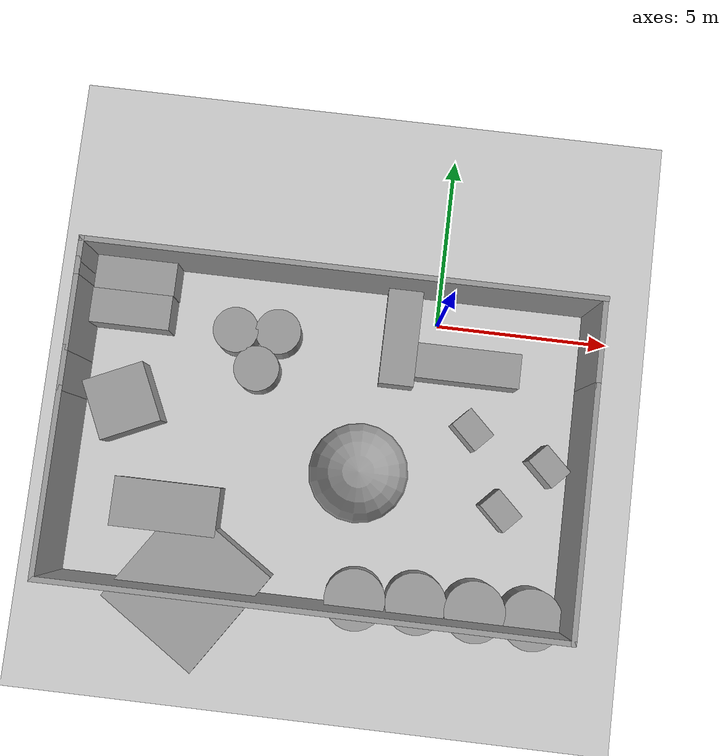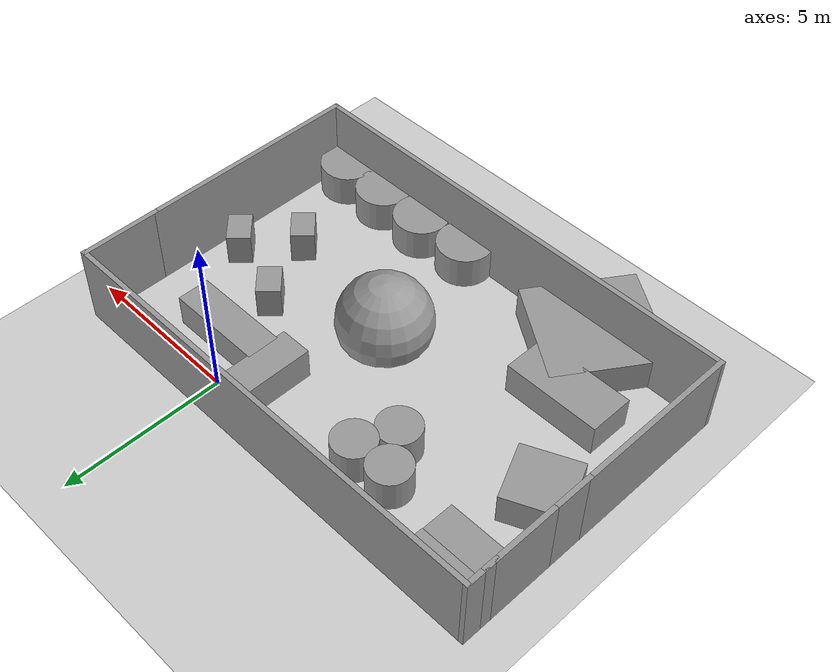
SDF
<sdf version="1.7">
 <world name="default">
  <scene><ambient>0.4 0.4 0.4 1</ambient><background>0.7 0.7 0.7 1</background><shadows>1</shadows></scene>
  <light name="sun" type="directional">
   <pose>0 0 10 0 -0 0</pose>
   <diffuse>0.8 0.8 0.8 1</diffuse>
   <specular>0.2 0.2 0.2 1</specular>
   <attenuation>
    <range>1000</range>
    <constant>0.9</constant>
    <linear>0.01</linear>
    <quadratic>0.001</quadratic>
   </attenuation>
   <direction>-0.5 0.1 -0.9</direction>
   <spot><inner_angle>0</inner_angle><outer_angle>0</outer_angle><falloff>0</falloff></spot>
  </light>
  <model name="ground_plane">
   <static>1</static>
   <link name="link">
    <collision name="collision">
     <geometry><plane><normal>0 0 1</normal><size>100 100</size></plane></geometry>
     <surface><friction><ode><mu>100</mu><mu2>50</mu2></ode></friction></surface>
    </collision>
    <visual name="visual">
     <cast_shadows>0</cast_shadows>
     <geometry><plane><normal>0 0 1</normal><size>100 100</size></plane></geometry>
     <material>
      <script><uri>file://media/materials/scripts/gazebo.material</uri><name>Gazebo/Grey</name></script>
     </material>
    </visual>
   </link>
  </model>
  <physics type="ode">
   <real_time_update_rate>0</real_time_update_rate>
   <max_step_size>0.001</max_step_size>
   <real_time_factor>1</real_time_factor>
   <ode>
    <solver>
     <type>quick</type>
     <iters>150</iters>
     <precon_iters>0</precon_iters>
     <sor>1.4</sor>
     <use_dynamic_moi_rescaling>1</use_dynamic_moi_rescaling>
    </solver>
    <constraints>
     <cfm>1e-05</cfm>
     <erp>0.2</erp>
     <contact_max_correcting_vel>2000</contact_max_correcting_vel>
     <contact_surface_layer>0.01</contact_surface_layer>
    </constraints>
   </ode>
  </physics>
  <gravity>0 0 -9.8</gravity>
  <magnetic_field>6e-06 2.3e-05 -4.2e-05</magnetic_field>
  <atmosphere type="adiabatic"/>
  <spherical_coordinates>
   <surface_model>EARTH_WGS84</surface_model>
   <latitude_deg>0</latitude_deg>
   <longitude_deg>0</longitude_deg>
   <elevation>0</elevation>
   <heading_deg>0</heading_deg>
  </spherical_coordinates>
  <model name="half_square">
   <pose>-2.87363 -3.76482 0 0 -0 0</pose>
   <link name="Wall_0">
    <collision name="Wall_0_Collision">
     <geometry><box><size>14.5 0.15 2.5</size></box></geometry>
     <pose>0 0 1.25 0 -0 0</pose>
    </collision>
    <visual name="Wall_0_Visual">
     <pose>0 0 1.25 0 -0 0</pose>
     <geometry><box><size>14.5 0.15 2.5</size></box></geometry>
     <material>
      <script><uri>file://media/materials/scripts/gazebo.material</uri><name>Gazebo/Grey</name></script>
      <ambient>1 1 1 1</ambient>
     </material>
     <meta><layer>0</layer></meta>
    </visual>
    <pose>-0.010056 -4.61503 0 0 -0 0</pose>
   </link>
   <link name="Wall_11">
    <collision name="Wall_11_Collision">
     <geometry><box><size>2.5 0.15 2.5</size></box></geometry>
     <pose>0 0 1.25 0 -0 0</pose>
    </collision>
    <visual name="Wall_11_Visual">
     <pose>0 0 1.25 0 -0 0</pose>
     <geometry><box><size>2.5 0.15 2.5</size></box></geometry>
     <material>
      <script><uri>file://media/materials/scripts/gazebo.material</uri><name>Gazebo/Grey</name></script>
      <ambient>1 1 1 1</ambient>
     </material>
     <meta><layer>0</layer></meta>
    </visual>
    <pose>7.16494 3.40997 0 0 -0 1.5708</pose>
   </link>
   <link name="Wall_13">
    <collision name="Wall_13_Collision">
     <geometry><box><size>0.730235 0.15 2.5</size></box></geometry>
     <pose>0 0 1.25 0 -0 0</pose>
    </collision>
    <visual name="Wall_13_Visual">
     <pose>0 0 1.25 0 -0 0</pose>
     <geometry><box><size>0.730235 0.15 2.5</size></box></geometry>
     <material>
      <script><uri>file://media/materials/scripts/gazebo.material</uri><name>Gazebo/Grey</name></script>
      <ambient>1 1 1 1</ambient>
     </material>
     <meta><layer>0</layer></meta>
    </visual>
    <pose>-7.18506 4.32491 0 0 -0 1.5708</pose>
   </link>
   <link name="Wall_14">
    <collision name="Wall_14_Collision">
     <geometry><box><size>14.5 0.15 2.5</size></box></geometry>
     <pose>0 0 1.25 0 -0 0</pose>
    </collision>
    <visual name="Wall_14_Visual">
     <pose>0 0 1.25 0 -0 0</pose>
     <geometry><box><size>14.5 0.15 2.5</size></box></geometry>
     <material>
      <script><uri>file://media/materials/scripts/gazebo.material</uri><name>Gazebo/Grey</name></script>
      <ambient>1 1 1 1</ambient>
     </material>
     <meta><layer>0</layer></meta>
    </visual>
    <pose>0.010057 4.61486 0 0 -0 0</pose>
   </link>
   <link name="Wall_2">
    <collision name="Wall_2_Collision">
     <geometry><box><size>5.25 0.15 2.5</size></box></geometry>
     <pose>0 0 1.25 0 -0 0</pose>
    </collision>
    <visual name="Wall_2_Visual">
     <pose>0 0 1.25 0 -0 0</pose>
     <geometry><box><size>5.25 0.15 2.5</size></box></geometry>
     <material>
      <script><uri>file://media/materials/scripts/gazebo.material</uri><name>Gazebo/Grey</name></script>
      <ambient>1 1 1 1</ambient>
     </material>
     <meta><layer>0</layer></meta>
    </visual>
    <pose>-7.18506 -2.06503 0 0 -0 1.5708</pose>
   </link>
   <link name="Wall_4">
    <collision name="Wall_4_Collision">
     <geometry><box><size>7 0.15 2.5</size></box></geometry>
     <pose>0 0 1.25 0 -0 0</pose>
    </collision>
    <visual name="Wall_4_Visual">
     <pose>0 0 1.25 0 -0 0</pose>
     <geometry><box><size>7 0.15 2.5</size></box></geometry>
     <material>
      <script><uri>file://media/materials/scripts/gazebo.material</uri><name>Gazebo/Grey</name></script>
      <ambient>1 1 1 1</ambient>
     </material>
     <meta><layer>0</layer></meta>
    </visual>
    <pose>7.16494 -1.19003 0 0 -0 1.5708</pose>
   </link>
   <link name="Wall_6">
    <collision name="Wall_6_Collision">
     <geometry><box><size>1.25 0.15 2.5</size></box></geometry>
     <pose>0 0 1.25 0 -0 0</pose>
    </collision>
    <visual name="Wall_6_Visual">
     <pose>0 0 1.25 0 -0 0</pose>
     <geometry><box><size>1.25 0.15 2.5</size></box></geometry>
     <material>
      <script><uri>file://media/materials/scripts/gazebo.material</uri><name>Gazebo/Grey</name></script>
      <ambient>1 1 1 1</ambient>
     </material>
     <meta><layer>0</layer></meta>
    </visual>
    <pose>-7.18506 1.03497 0 0 -0 1.5708</pose>
   </link>
   <link name="Wall_8">
    <collision name="Wall_8_Collision">
     <geometry><box><size>2.25 0.15 2.5</size></box></geometry>
     <pose>0 0 1.25 0 -0 0</pose>
    </collision>
    <visual name="Wall_8_Visual">
     <pose>0 0 1.25 0 -0 0</pose>
     <geometry><box><size>2.25 0.15 2.5</size></box></geometry>
     <material>
      <script><uri>file://media/materials/scripts/gazebo.material</uri><name>Gazebo/Grey</name></script>
      <ambient>1 1 1 1</ambient>
     </material>
     <meta><layer>0</layer></meta>
    </visual>
    <pose>-7.18506 2.63497 0 0 -0 1.5708</pose>
   </link>
   <link name="Wall_9">
    <collision name="Wall_9_Collision">
     <geometry><box><size>0.5 0.15 2.5</size></box></geometry>
     <pose>0 0 1.25 0 -0 0</pose>
    </collision>
    <visual name="Wall_9_Visual">
     <pose>0 0 1.25 0 -0 0</pose>
     <geometry><box><size>0.5 0.15 2.5</size></box></geometry>
     <material>
      <script><uri>file://media/materials/scripts/gazebo.material</uri><name>Gazebo/Grey</name></script>
      <ambient>1 1 1 1</ambient>
     </material>
     <meta><layer>0</layer></meta>
    </visual>
    <pose>-7.18506 3.85997 0 0 -0 1.5708</pose>
   </link>
   <static>1</static>
  </model>
  <plugin name="gazebo_occupancy_map" filename="libgazebo_2Dmap_plugin.so">
   <map_resolution>0.02</map_resolution>
   <map_height>0.7</map_height>
   <map_size_x>20</map_size_x>
   <map_size_y>20</map_size_y>
   <init_robot_x>0</init_robot_x>
   <init_robot_y>0</init_robot_y>
  </plugin>
  <model name="weird_shapes">
   <link name="link_9">
    <inertial>
     <mass>11.2906</mass>
     <inertia><ixx>12.0131</ixx><ixy>0</ixy><ixz>0</ixz><iyy>11.1333</iyy><iyz>0</iyz><izz>21.2647</izz></inertia>
    </inertial>
    <pose>-3.71139 -4.26464 0 0 0 -0.587949</pose>
    <visual name="visual">
     <geometry><box><size>3.29132 3.43044 1</size></box></geometry>
     <material>
      <lighting>1</lighting>
      <script><uri>file://media/materials/scripts/gazebo.material</uri><name>Gazebo/Grey</name></script>
      <shader type="pixel"/>
     </material>
    </visual>
    <collision name="collision">
     <geometry><box><size>3.29132 3.43044 1</size></box></geometry>
     <surface>
      <friction>
       <ode><mu>1</mu><mu2>1</mu2><fdir1>0 0 0</fdir1><slip1>0</slip1><slip2>0</slip2></ode>
       <torsional>
        <coefficient>1</coefficient>
        <patch_radius>0</patch_radius>
        <surface_radius>0</surface_radius>
        <use_patch_radius>1</use_patch_radius>
        <ode><slip>0</slip></ode>
       </torsional>
      </friction>
      <bounce><restitution_coefficient>0</restitution_coefficient><threshold>1e+06</threshold></bounce>
      <contact>
       <collide_without_contact>0</collide_without_contact>
       <collide_without_contact_bitmask>1</collide_without_contact_bitmask>
       <collide_bitmask>1</collide_bitmask>
       <ode>
        <soft_cfm>0</soft_cfm>
        <soft_erp>0.2</soft_erp>
        <kp>1e+13</kp>
        <kd>1</kd>
        <max_vel>0.01</max_vel>
        <min_depth>0</min_depth>
       </ode>
       <bullet>
        <split_impulse>1</split_impulse>
        <split_impulse_penetration_threshold>-0.01</split_impulse_penetration_threshold>
        <soft_cfm>0</soft_cfm>
        <soft_erp>0.2</soft_erp>
        <kp>1e+13</kp>
        <kd>1</kd>
       </bullet>
      </contact>
     </surface>
    </collision>
   </link>
   <link name="link_10">
    <inertial>
     <mass>4.18462</mass>
     <inertia><ixx>1.02614</ixx><ixy>0</ixy><ixz>0</ixz><iyy>3.49209</iyy><iyz>0</iyz><izz>3.8208</izz></inertia>
    </inertial>
    <pose>-4.59613 -2.14982 0 0 -0 0</pose>
    <visual name="visual">
     <geometry><box><size>3.00235 1.39378 1</size></box></geometry>
     <material>
      <lighting>1</lighting>
      <script><uri>file://media/materials/scripts/gazebo.material</uri><name>Gazebo/Grey</name></script>
      <shader type="pixel"/>
     </material>
    </visual>
    <collision name="collision">
     <geometry><box><size>3.00235 1.39378 1</size></box></geometry>
     <surface>
      <friction>
       <ode><mu>1</mu><mu2>1</mu2><fdir1>0 0 0</fdir1><slip1>0</slip1><slip2>0</slip2></ode>
       <torsional>
        <coefficient>1</coefficient>
        <patch_radius>0</patch_radius>
        <surface_radius>0</surface_radius>
        <use_patch_radius>1</use_patch_radius>
        <ode><slip>0</slip></ode>
       </torsional>
      </friction>
      <bounce><restitution_coefficient>0</restitution_coefficient><threshold>1e+06</threshold></bounce>
      <contact>
       <collide_without_contact>0</collide_without_contact>
       <collide_without_contact_bitmask>1</collide_without_contact_bitmask>
       <collide_bitmask>1</collide_bitmask>
       <ode>
        <soft_cfm>0</soft_cfm>
        <soft_erp>0.2</soft_erp>
        <kp>1e+13</kp>
        <kd>1</kd>
        <max_vel>0.01</max_vel>
        <min_depth>0</min_depth>
       </ode>
       <bullet>
        <split_impulse>1</split_impulse>
        <split_impulse_penetration_threshold>-0.01</split_impulse_penetration_threshold>
        <soft_cfm>0</soft_cfm>
        <soft_erp>0.2</soft_erp>
        <kp>1e+13</kp>
        <kd>1</kd>
       </bullet>
      </contact>
     </surface>
    </collision>
   </link>
   <link name="link_11">
    <inertial>
     <mass>1.70217</mass>
     <inertia>
      <ixx>0.322934</ixx>
      <ixy>0</ixy>
      <ixz>0</ixz>
      <iyy>0.322934</iyy>
      <iyz>0</iyz>
      <izz>0.362174</izz>
     </inertia>
    </inertial>
    <pose>-2.53479 2.02637 0 0 -0 0</pose>
    <visual name="visual">
     <geometry><cylinder><radius>0.652338</radius><length>1</length></cylinder></geometry>
     <material>
      <lighting>1</lighting>
      <script><uri>file://media/materials/scripts/gazebo.material</uri><name>Gazebo/Grey</name></script>
      <shader type="pixel"/>
     </material>
    </visual>
    <collision name="collision">
     <geometry><cylinder><radius>0.652338</radius><length>1</length></cylinder></geometry>
     <surface>
      <friction>
       <ode><mu>1</mu><mu2>1</mu2><fdir1>0 0 0</fdir1><slip1>0</slip1><slip2>0</slip2></ode>
       <torsional>
        <coefficient>1</coefficient>
        <patch_radius>0</patch_radius>
        <surface_radius>0</surface_radius>
        <use_patch_radius>1</use_patch_radius>
        <ode><slip>0</slip></ode>
       </torsional>
      </friction>
      <bounce><restitution_coefficient>0</restitution_coefficient><threshold>1e+06</threshold></bounce>
      <contact>
       <collide_without_contact>0</collide_without_contact>
       <collide_without_contact_bitmask>1</collide_without_contact_bitmask>
       <collide_bitmask>1</collide_bitmask>
       <ode>
        <soft_cfm>0</soft_cfm>
        <soft_erp>0.2</soft_erp>
        <kp>1e+13</kp>
        <kd>1</kd>
        <max_vel>0.01</max_vel>
        <min_depth>0</min_depth>
       </ode>
       <bullet>
        <split_impulse>1</split_impulse>
        <split_impulse_penetration_threshold>-0.01</split_impulse_penetration_threshold>
        <soft_cfm>0</soft_cfm>
        <soft_erp>0.2</soft_erp>
        <kp>1e+13</kp>
        <kd>1</kd>
       </bullet>
      </contact>
     </surface>
    </collision>
   </link>
   <link name="link_11_clone">
    <inertial>
     <mass>1.70217</mass>
     <inertia>
      <ixx>0.322934</ixx>
      <ixy>0</ixy>
      <ixz>0</ixz>
      <iyy>0.322934</iyy>
      <iyz>0</iyz>
      <izz>0.362174</izz>
     </inertia>
    </inertial>
    <pose>-2.0426 3.14722 0 0 -0 0</pose>
    <visual name="visual">
     <geometry><cylinder><radius>0.652338</radius><length>1</length></cylinder></geometry>
     <material>
      <lighting>1</lighting>
      <script><uri>file://media/materials/scripts/gazebo.material</uri><name>Gazebo/Grey</name></script>
      <shader type="pixel"/>
     </material>
    </visual>
    <collision name="collision">
     <geometry><cylinder><radius>0.652338</radius><length>1</length></cylinder></geometry>
     <surface>
      <friction>
       <ode><mu>1</mu><mu2>1</mu2><fdir1>0 0 0</fdir1><slip1>0</slip1><slip2>0</slip2></ode>
       <torsional>
        <coefficient>1</coefficient>
        <patch_radius>0</patch_radius>
        <surface_radius>0</surface_radius>
        <use_patch_radius>1</use_patch_radius>
        <ode><slip>0</slip></ode>
       </torsional>
      </friction>
      <bounce><restitution_coefficient>0</restitution_coefficient><threshold>1e+06</threshold></bounce>
      <contact>
       <collide_without_contact>0</collide_without_contact>
       <collide_without_contact_bitmask>1</collide_without_contact_bitmask>
       <collide_bitmask>1</collide_bitmask>
       <ode>
        <soft_cfm>0</soft_cfm>
        <soft_erp>0.2</soft_erp>
        <kp>1e+13</kp>
        <kd>1</kd>
        <max_vel>0.01</max_vel>
        <min_depth>0</min_depth>
       </ode>
       <bullet>
        <split_impulse>1</split_impulse>
        <split_impulse_penetration_threshold>-0.01</split_impulse_penetration_threshold>
        <soft_cfm>0</soft_cfm>
        <soft_erp>0.2</soft_erp>
        <kp>1e+13</kp>
        <kd>1</kd>
       </bullet>
      </contact>
     </surface>
    </collision>
   </link>
   <link name="link_11_clone_0">
    <inertial>
     <mass>1.70217</mass>
     <inertia>
      <ixx>0.322934</ixx>
      <ixy>0</ixy>
      <ixz>0</ixz>
      <iyy>0.322934</iyy>
      <iyz>0</iyz>
      <izz>0.362174</izz>
     </inertia>
    </inertial>
    <pose>-3.25667 3.06531 0 0 -0 0</pose>
    <visual name="visual">
     <geometry><cylinder><radius>0.652338</radius><length>1</length></cylinder></geometry>
     <material>
      <lighting>1</lighting>
      <script><uri>file://media/materials/scripts/gazebo.material</uri><name>Gazebo/Grey</name></script>
      <shader type="pixel"/>
     </material>
    </visual>
    <collision name="collision">
     <geometry><cylinder><radius>0.652338</radius><length>1</length></cylinder></geometry>
     <surface>
      <friction>
       <ode><mu>1</mu><mu2>1</mu2><fdir1>0 0 0</fdir1><slip1>0</slip1><slip2>0</slip2></ode>
       <torsional>
        <coefficient>1</coefficient>
        <patch_radius>0</patch_radius>
        <surface_radius>0</surface_radius>
        <use_patch_radius>1</use_patch_radius>
        <ode><slip>0</slip></ode>
       </torsional>
      </friction>
      <bounce><restitution_coefficient>0</restitution_coefficient><threshold>1e+06</threshold></bounce>
      <contact>
       <collide_without_contact>0</collide_without_contact>
       <collide_without_contact_bitmask>1</collide_without_contact_bitmask>
       <collide_bitmask>1</collide_bitmask>
       <ode>
        <soft_cfm>0</soft_cfm>
        <soft_erp>0.2</soft_erp>
        <kp>1e+13</kp>
        <kd>1</kd>
        <max_vel>0.01</max_vel>
        <min_depth>0</min_depth>
       </ode>
       <bullet>
        <split_impulse>1</split_impulse>
        <split_impulse_penetration_threshold>-0.01</split_impulse_penetration_threshold>
        <soft_cfm>0</soft_cfm>
        <soft_erp>0.2</soft_erp>
        <kp>1e+13</kp>
        <kd>1</kd>
       </bullet>
      </contact>
     </surface>
    </collision>
   </link>
   <link name="link_13">
    <inertial>
     <mass>2.30968</mass>
     <inertia><ixx>0.384947</ixx><ixy>0</ixy><ixz>0</ixz><iyy>1.21924</iyy><iyz>0</iyz><izz>1.21924</izz></inertia>
    </inertial>
    <pose>-6.30175 4.30587 0 0 -0 0</pose>
    <visual name="visual">
     <geometry><box><size>2.30968 1 1</size></box></geometry>
     <material>
      <lighting>1</lighting>
      <script><uri>file://media/materials/scripts/gazebo.material</uri><name>Gazebo/Grey</name></script>
      <shader type="pixel"/>
     </material>
    </visual>
    <collision name="collision">
     <geometry><box><size>2.30968 1 1</size></box></geometry>
     <surface>
      <friction>
       <ode><mu>1</mu><mu2>1</mu2><fdir1>0 0 0</fdir1><slip1>0</slip1><slip2>0</slip2></ode>
       <torsional>
        <coefficient>1</coefficient>
        <patch_radius>0</patch_radius>
        <surface_radius>0</surface_radius>
        <use_patch_radius>1</use_patch_radius>
        <ode><slip>0</slip></ode>
       </torsional>
      </friction>
      <bounce><restitution_coefficient>0</restitution_coefficient><threshold>1e+06</threshold></bounce>
      <contact>
       <collide_without_contact>0</collide_without_contact>
       <collide_without_contact_bitmask>1</collide_without_contact_bitmask>
       <collide_bitmask>1</collide_bitmask>
       <ode>
        <soft_cfm>0</soft_cfm>
        <soft_erp>0.2</soft_erp>
        <kp>1e+13</kp>
        <kd>1</kd>
        <max_vel>0.01</max_vel>
        <min_depth>0</min_depth>
       </ode>
       <bullet>
        <split_impulse>1</split_impulse>
        <split_impulse_penetration_threshold>-0.01</split_impulse_penetration_threshold>
        <soft_cfm>0</soft_cfm>
        <soft_erp>0.2</soft_erp>
        <kp>1e+13</kp>
        <kd>1</kd>
       </bullet>
      </contact>
     </surface>
    </collision>
   </link>
   <link name="link_13_clone">
    <inertial>
     <mass>2.30968</mass>
     <inertia><ixx>0.384947</ixx><ixy>0</ixy><ixz>0</ixz><iyy>1.21924</iyy><iyz>0</iyz><izz>1.21924</izz></inertia>
    </inertial>
    <pose>-6.31864 3.31345 0 0 -0 0</pose>
    <visual name="visual">
     <geometry><box><size>2.30968 1 1</size></box></geometry>
     <material>
      <lighting>1</lighting>
      <script><uri>file://media/materials/scripts/gazebo.material</uri><name>Gazebo/Grey</name></script>
      <shader type="pixel"/>
     </material>
    </visual>
    <collision name="collision">
     <geometry><box><size>2.30968 1 1</size></box></geometry>
     <surface>
      <friction>
       <ode><mu>1</mu><mu2>1</mu2><fdir1>0 0 0</fdir1><slip1>0</slip1><slip2>0</slip2></ode>
       <torsional>
        <coefficient>1</coefficient>
        <patch_radius>0</patch_radius>
        <surface_radius>0</surface_radius>
        <use_patch_radius>1</use_patch_radius>
        <ode><slip>0</slip></ode>
       </torsional>
      </friction>
      <bounce><restitution_coefficient>0</restitution_coefficient><threshold>1e+06</threshold></bounce>
      <contact>
       <collide_without_contact>0</collide_without_contact>
       <collide_without_contact_bitmask>1</collide_without_contact_bitmask>
       <collide_bitmask>1</collide_bitmask>
       <ode>
        <soft_cfm>0</soft_cfm>
        <soft_erp>0.2</soft_erp>
        <kp>1e+13</kp>
        <kd>1</kd>
        <max_vel>0.01</max_vel>
        <min_depth>0</min_depth>
       </ode>
       <bullet>
        <split_impulse>1</split_impulse>
        <split_impulse_penetration_threshold>-0.01</split_impulse_penetration_threshold>
        <soft_cfm>0</soft_cfm>
        <soft_erp>0.2</soft_erp>
        <kp>1e+13</kp>
        <kd>1</kd>
       </bullet>
      </contact>
     </surface>
    </collision>
   </link>
   <link name="link_14">
    <inertial>
     <mass>3.18958</mass>
     <inertia><ixx>1.10438</ixx><ixy>0</ixy><ixz>0</ixz><iyy>1.12289</iyy><iyz>0</iyz><izz>1.69567</izz></inertia>
    </inertial>
    <pose>-6.22205 0.672292 0 0 -0 0.43107</pose>
    <visual name="visual">
     <geometry><box><size>1.79571 1.77622 1</size></box></geometry>
     <material>
      <lighting>1</lighting>
      <script><uri>file://media/materials/scripts/gazebo.material</uri><name>Gazebo/Grey</name></script>
      <shader type="pixel"/>
     </material>
    </visual>
    <collision name="collision">
     <geometry><box><size>1.79571 1.77622 1</size></box></geometry>
     <surface>
      <friction>
       <ode><mu>1</mu><mu2>1</mu2><fdir1>0 0 0</fdir1><slip1>0</slip1><slip2>0</slip2></ode>
       <torsional>
        <coefficient>1</coefficient>
        <patch_radius>0</patch_radius>
        <surface_radius>0</surface_radius>
        <use_patch_radius>1</use_patch_radius>
        <ode><slip>0</slip></ode>
       </torsional>
      </friction>
      <bounce><restitution_coefficient>0</restitution_coefficient><threshold>1e+06</threshold></bounce>
      <contact>
       <collide_without_contact>0</collide_without_contact>
       <collide_without_contact_bitmask>1</collide_without_contact_bitmask>
       <collide_bitmask>1</collide_bitmask>
       <ode>
        <soft_cfm>0</soft_cfm>
        <soft_erp>0.2</soft_erp>
        <kp>1e+13</kp>
        <kd>1</kd>
        <max_vel>0.01</max_vel>
        <min_depth>0</min_depth>
       </ode>
       <bullet>
        <split_impulse>1</split_impulse>
        <split_impulse_penetration_threshold>-0.01</split_impulse_penetration_threshold>
        <soft_cfm>0</soft_cfm>
        <soft_erp>0.2</soft_erp>
        <kp>1e+13</kp>
        <kd>1</kd>
       </bullet>
      </contact>
     </surface>
    </collision>
   </link>
   <link name="link_15">
    <inertial>
     <mass>2.95741</mass>
     <inertia>
      <ixx>0.793088</ixx>
      <ixy>0</ixy>
      <ixz>0</ixz>
      <iyy>0.793088</iyy>
      <iyz>0</iyz>
      <izz>1.09328</izz>
     </inertia>
    </inertial>
    <pose>0.99559 -4.08238 0 0 -0 0</pose>
    <visual name="visual">
     <geometry><cylinder><radius>0.859853</radius><length>1</length></cylinder></geometry>
     <material>
      <lighting>1</lighting>
      <script><uri>file://media/materials/scripts/gazebo.material</uri><name>Gazebo/Grey</name></script>
      <shader type="pixel"/>
     </material>
    </visual>
    <collision name="collision">
     <geometry><cylinder><radius>0.859853</radius><length>1</length></cylinder></geometry>
     <surface>
      <friction>
       <ode><mu>1</mu><mu2>1</mu2><fdir1>0 0 0</fdir1><slip1>0</slip1><slip2>0</slip2></ode>
       <torsional>
        <coefficient>1</coefficient>
        <patch_radius>0</patch_radius>
        <surface_radius>0</surface_radius>
        <use_patch_radius>1</use_patch_radius>
        <ode><slip>0</slip></ode>
       </torsional>
      </friction>
      <bounce><restitution_coefficient>0</restitution_coefficient><threshold>1e+06</threshold></bounce>
      <contact>
       <collide_without_contact>0</collide_without_contact>
       <collide_without_contact_bitmask>1</collide_without_contact_bitmask>
       <collide_bitmask>1</collide_bitmask>
       <ode>
        <soft_cfm>0</soft_cfm>
        <soft_erp>0.2</soft_erp>
        <kp>1e+13</kp>
        <kd>1</kd>
        <max_vel>0.01</max_vel>
        <min_depth>0</min_depth>
       </ode>
       <bullet>
        <split_impulse>1</split_impulse>
        <split_impulse_penetration_threshold>-0.01</split_impulse_penetration_threshold>
        <soft_cfm>0</soft_cfm>
        <soft_erp>0.2</soft_erp>
        <kp>1e+13</kp>
        <kd>1</kd>
       </bullet>
      </contact>
     </surface>
    </collision>
   </link>
   <link name="link_15_clone">
    <inertial>
     <mass>2.95741</mass>
     <inertia>
      <ixx>0.793088</ixx>
      <ixy>0</ixy>
      <ixz>0</ixz>
      <iyy>0.793088</iyy>
      <iyz>0</iyz>
      <izz>1.09328</izz>
     </inertia>
    </inertial>
    <pose>2.69439 -3.99406 0 0 -0 0</pose>
    <visual name="visual">
     <geometry><cylinder><radius>0.859853</radius><length>1</length></cylinder></geometry>
     <material>
      <lighting>1</lighting>
      <script><uri>file://media/materials/scripts/gazebo.material</uri><name>Gazebo/Grey</name></script>
      <shader type="pixel"/>
     </material>
    </visual>
    <collision name="collision">
     <geometry><cylinder><radius>0.859853</radius><length>1</length></cylinder></geometry>
     <surface>
      <friction>
       <ode><mu>1</mu><mu2>1</mu2><fdir1>0 0 0</fdir1><slip1>0</slip1><slip2>0</slip2></ode>
       <torsional>
        <coefficient>1</coefficient>
        <patch_radius>0</patch_radius>
        <surface_radius>0</surface_radius>
        <use_patch_radius>1</use_patch_radius>
        <ode><slip>0</slip></ode>
       </torsional>
      </friction>
      <bounce><restitution_coefficient>0</restitution_coefficient><threshold>1e+06</threshold></bounce>
      <contact>
       <collide_without_contact>0</collide_without_contact>
       <collide_without_contact_bitmask>1</collide_without_contact_bitmask>
       <collide_bitmask>1</collide_bitmask>
       <ode>
        <soft_cfm>0</soft_cfm>
        <soft_erp>0.2</soft_erp>
        <kp>1e+13</kp>
        <kd>1</kd>
        <max_vel>0.01</max_vel>
        <min_depth>0</min_depth>
       </ode>
       <bullet>
        <split_impulse>1</split_impulse>
        <split_impulse_penetration_threshold>-0.01</split_impulse_penetration_threshold>
        <soft_cfm>0</soft_cfm>
        <soft_erp>0.2</soft_erp>
        <kp>1e+13</kp>
        <kd>1</kd>
       </bullet>
      </contact>
     </surface>
    </collision>
   </link>
   <link name="link_15_clone_0">
    <inertial>
     <mass>2.95741</mass>
     <inertia>
      <ixx>0.793088</ixx>
      <ixy>0</ixy>
      <ixz>0</ixz>
      <iyy>0.793088</iyy>
      <iyz>0</iyz>
      <izz>1.09328</izz>
     </inertia>
    </inertial>
    <pose>4.34868 -4.03193 0 0 -0 0</pose>
    <visual name="visual">
     <geometry><cylinder><radius>0.859853</radius><length>1</length></cylinder></geometry>
     <material>
      <lighting>1</lighting>
      <script><uri>file://media/materials/scripts/gazebo.material</uri><name>Gazebo/Grey</name></script>
      <shader type="pixel"/>
     </material>
    </visual>
    <collision name="collision">
     <geometry><cylinder><radius>0.859853</radius><length>1</length></cylinder></geometry>
     <surface>
      <friction>
       <ode><mu>1</mu><mu2>1</mu2><fdir1>0 0 0</fdir1><slip1>0</slip1><slip2>0</slip2></ode>
       <torsional>
        <coefficient>1</coefficient>
        <patch_radius>0</patch_radius>
        <surface_radius>0</surface_radius>
        <use_patch_radius>1</use_patch_radius>
        <ode><slip>0</slip></ode>
       </torsional>
      </friction>
      <bounce><restitution_coefficient>0</restitution_coefficient><threshold>1e+06</threshold></bounce>
      <contact>
       <collide_without_contact>0</collide_without_contact>
       <collide_without_contact_bitmask>1</collide_without_contact_bitmask>
       <collide_bitmask>1</collide_bitmask>
       <ode>
        <soft_cfm>0</soft_cfm>
        <soft_erp>0.2</soft_erp>
        <kp>1e+13</kp>
        <kd>1</kd>
        <max_vel>0.01</max_vel>
        <min_depth>0</min_depth>
       </ode>
       <bullet>
        <split_impulse>1</split_impulse>
        <split_impulse_penetration_threshold>-0.01</split_impulse_penetration_threshold>
        <soft_cfm>0</soft_cfm>
        <soft_erp>0.2</soft_erp>
        <kp>1e+13</kp>
        <kd>1</kd>
       </bullet>
      </contact>
     </surface>
    </collision>
   </link>
   <link name="link_15_clone_1">
    <inertial>
     <mass>2.95741</mass>
     <inertia>
      <ixx>0.793088</ixx>
      <ixy>0</ixy>
      <ixz>0</ixz>
      <iyy>0.793088</iyy>
      <iyz>0</iyz>
      <izz>1.09328</izz>
     </inertia>
    </inertial>
    <pose>5.94918 -4.06079 0 0 -0 0</pose>
    <visual name="visual">
     <geometry><cylinder><radius>0.859853</radius><length>1</length></cylinder></geometry>
     <material>
      <lighting>1</lighting>
      <script><uri>file://media/materials/scripts/gazebo.material</uri><name>Gazebo/Grey</name></script>
      <shader type="pixel"/>
     </material>
    </visual>
    <collision name="collision">
     <geometry><cylinder><radius>0.859853</radius><length>1</length></cylinder></geometry>
     <surface>
      <friction>
       <ode><mu>1</mu><mu2>1</mu2><fdir1>0 0 0</fdir1><slip1>0</slip1><slip2>0</slip2></ode>
       <torsional>
        <coefficient>1</coefficient>
        <patch_radius>0</patch_radius>
        <surface_radius>0</surface_radius>
        <use_patch_radius>1</use_patch_radius>
        <ode><slip>0</slip></ode>
       </torsional>
      </friction>
      <bounce><restitution_coefficient>0</restitution_coefficient><threshold>1e+06</threshold></bounce>
      <contact>
       <collide_without_contact>0</collide_without_contact>
       <collide_without_contact_bitmask>1</collide_without_contact_bitmask>
       <collide_bitmask>1</collide_bitmask>
       <ode>
        <soft_cfm>0</soft_cfm>
        <soft_erp>0.2</soft_erp>
        <kp>1e+13</kp>
        <kd>1</kd>
        <max_vel>0.01</max_vel>
        <min_depth>0</min_depth>
       </ode>
       <bullet>
        <split_impulse>1</split_impulse>
        <split_impulse_penetration_threshold>-0.01</split_impulse_penetration_threshold>
        <soft_cfm>0</soft_cfm>
        <soft_erp>0.2</soft_erp>
        <kp>1e+13</kp>
        <kd>1</kd>
       </bullet>
      </contact>
     </surface>
    </collision>
   </link>
   <link name="link_16">
    <inertial>
     <mass>3.04126</mass>
     <inertia><ixx>0.506877</ixx><ixy>0</ixy><ixz>0</ixz><iyy>2.59756</iyy><iyz>0</iyz><izz>2.59756</izz></inertia>
    </inertial>
    <pose>3.42182 2.80707 0 0 -0 0</pose>
    <visual name="visual">
     <geometry><box><size>3.04126 1 1</size></box></geometry>
     <material>
      <lighting>1</lighting>
      <script><uri>file://media/materials/scripts/gazebo.material</uri><name>Gazebo/Grey</name></script>
      <shader type="pixel"/>
     </material>
    </visual>
    <collision name="collision">
     <geometry><box><size>3.04126 1 1</size></box></geometry>
     <surface>
      <friction>
       <ode><mu>1</mu><mu2>1</mu2><fdir1>0 0 0</fdir1><slip1>0</slip1><slip2>0</slip2></ode>
       <torsional>
        <coefficient>1</coefficient>
        <patch_radius>0</patch_radius>
        <surface_radius>0</surface_radius>
        <use_patch_radius>1</use_patch_radius>
        <ode><slip>0</slip></ode>
       </torsional>
      </friction>
      <bounce><restitution_coefficient>0</restitution_coefficient><threshold>1e+06</threshold></bounce>
      <contact>
       <collide_without_contact>0</collide_without_contact>
       <collide_without_contact_bitmask>1</collide_without_contact_bitmask>
       <collide_bitmask>1</collide_bitmask>
       <ode>
        <soft_cfm>0</soft_cfm>
        <soft_erp>0.2</soft_erp>
        <kp>1e+13</kp>
        <kd>1</kd>
        <max_vel>0.01</max_vel>
        <min_depth>0</min_depth>
       </ode>
       <bullet>
        <split_impulse>1</split_impulse>
        <split_impulse_penetration_threshold>-0.01</split_impulse_penetration_threshold>
        <soft_cfm>0</soft_cfm>
        <soft_erp>0.2</soft_erp>
        <kp>1e+13</kp>
        <kd>1</kd>
       </bullet>
      </contact>
     </surface>
    </collision>
   </link>
   <link name="link_17">
    <inertial>
     <mass>2.7534</mass>
     <inertia><ixx>1.96895</ixx><ixy>0</ixy><ixz>0</ixz><iyy>0.4589</iyy><iyz>0</iyz><izz>1.96895</izz></inertia>
    </inertial>
    <pose>1.46308 3.39655 0 0 -0 0</pose>
    <visual name="visual">
     <geometry><box><size>1 2.75339 1</size></box></geometry>
     <material>
      <lighting>1</lighting>
      <script><uri>file://media/materials/scripts/gazebo.material</uri><name>Gazebo/Grey</name></script>
      <shader type="pixel"/>
     </material>
    </visual>
    <collision name="collision">
     <geometry><box><size>1 2.75339 1</size></box></geometry>
     <surface>
      <friction>
       <ode><mu>1</mu><mu2>1</mu2><fdir1>0 0 0</fdir1><slip1>0</slip1><slip2>0</slip2></ode>
       <torsional>
        <coefficient>1</coefficient>
        <patch_radius>0</patch_radius>
        <surface_radius>0</surface_radius>
        <use_patch_radius>1</use_patch_radius>
        <ode><slip>0</slip></ode>
       </torsional>
      </friction>
      <bounce><restitution_coefficient>0</restitution_coefficient><threshold>1e+06</threshold></bounce>
      <contact>
       <collide_without_contact>0</collide_without_contact>
       <collide_without_contact_bitmask>1</collide_without_contact_bitmask>
       <collide_bitmask>1</collide_bitmask>
       <ode>
        <soft_cfm>0</soft_cfm>
        <soft_erp>0.2</soft_erp>
        <kp>1e+13</kp>
        <kd>1</kd>
        <max_vel>0.01</max_vel>
        <min_depth>0</min_depth>
       </ode>
       <bullet>
        <split_impulse>1</split_impulse>
        <split_impulse_penetration_threshold>-0.01</split_impulse_penetration_threshold>
        <soft_cfm>0</soft_cfm>
        <soft_erp>0.2</soft_erp>
        <kp>1e+13</kp>
        <kd>1</kd>
       </bullet>
      </contact>
     </surface>
    </collision>
   </link>
   <link name="link_18">
    <inertial>
     <mass>23.4768</mass>
     <inertia><ixx>19.2485</ixx><ixy>0</ixy><ixz>0</ixz><iyy>19.2485</iyy><iyz>0</iyz><izz>19.2485</izz></inertia>
    </inertial>
    <pose>0.693806 -0.567109 0 0 -0 0</pose>
    <visual name="visual">
     <geometry><sphere><radius>1.43169</radius></sphere></geometry>
     <material>
      <lighting>1</lighting>
      <script><uri>file://media/materials/scripts/gazebo.material</uri><name>Gazebo/Grey</name></script>
      <shader type="pixel"/>
     </material>
    </visual>
    <collision name="collision">
     <geometry><sphere><radius>1.43169</radius></sphere></geometry>
     <surface>
      <friction>
       <ode><mu>1</mu><mu2>1</mu2><fdir1>0 0 0</fdir1><slip1>0</slip1><slip2>0</slip2></ode>
       <torsional>
        <coefficient>1</coefficient>
        <patch_radius>0</patch_radius>
        <surface_radius>0</surface_radius>
        <use_patch_radius>1</use_patch_radius>
        <ode><slip>0</slip></ode>
       </torsional>
      </friction>
      <bounce><restitution_coefficient>0</restitution_coefficient><threshold>1e+06</threshold></bounce>
      <contact>
       <collide_without_contact>0</collide_without_contact>
       <collide_without_contact_bitmask>1</collide_without_contact_bitmask>
       <collide_bitmask>1</collide_bitmask>
       <ode>
        <soft_cfm>0</soft_cfm>
        <soft_erp>0.2</soft_erp>
        <kp>1e+13</kp>
        <kd>1</kd>
        <max_vel>0.01</max_vel>
        <min_depth>0</min_depth>
       </ode>
       <bullet>
        <split_impulse>1</split_impulse>
        <split_impulse_penetration_threshold>-0.01</split_impulse_penetration_threshold>
        <soft_cfm>0</soft_cfm>
        <soft_erp>0.2</soft_erp>
        <kp>1e+13</kp>
        <kd>1</kd>
       </bullet>
      </contact>
     </surface>
    </collision>
   </link>
   <link name="link_19">
    <inertial>
     <mass>0.715834</mass>
     <inertia>
      <ixx>0.0902202</ixx>
      <ixy>0</ixy>
      <ixz>0</ixz>
      <iyy>0.119306</iyy>
      <iyz>0</iyz>
      <izz>0.0902202</izz>
     </inertia>
    </inertial>
    <pose>4.79866 -1.16833 0 0 0 -0.763731</pose>
    <visual name="visual">
     <geometry><box><size>1 0.715836 1</size></box></geometry>
     <material>
      <lighting>1</lighting>
      <script><uri>file://media/materials/scripts/gazebo.material</uri><name>Gazebo/Grey</name></script>
      <shader type="pixel"/>
     </material>
    </visual>
    <collision name="collision">
     <geometry><box><size>1 0.715836 1</size></box></geometry>
     <surface>
      <friction>
       <ode><mu>1</mu><mu2>1</mu2><fdir1>0 0 0</fdir1><slip1>0</slip1><slip2>0</slip2></ode>
       <torsional>
        <coefficient>1</coefficient>
        <patch_radius>0</patch_radius>
        <surface_radius>0</surface_radius>
        <use_patch_radius>1</use_patch_radius>
        <ode><slip>0</slip></ode>
       </torsional>
      </friction>
      <bounce><restitution_coefficient>0</restitution_coefficient><threshold>1e+06</threshold></bounce>
      <contact>
       <collide_without_contact>0</collide_without_contact>
       <collide_without_contact_bitmask>1</collide_without_contact_bitmask>
       <collide_bitmask>1</collide_bitmask>
       <ode>
        <soft_cfm>0</soft_cfm>
        <soft_erp>0.2</soft_erp>
        <kp>1e+13</kp>
        <kd>1</kd>
        <max_vel>0.01</max_vel>
        <min_depth>0</min_depth>
       </ode>
       <bullet>
        <split_impulse>1</split_impulse>
        <split_impulse_penetration_threshold>-0.01</split_impulse_penetration_threshold>
        <soft_cfm>0</soft_cfm>
        <soft_erp>0.2</soft_erp>
        <kp>1e+13</kp>
        <kd>1</kd>
       </bullet>
      </contact>
     </surface>
    </collision>
   </link>
   <link name="link_19_clone">
    <inertial>
     <mass>0.715834</mass>
     <inertia>
      <ixx>0.0902202</ixx>
      <ixy>0</ixy>
      <ixz>0</ixz>
      <iyy>0.119306</iyy>
      <iyz>0</iyz>
      <izz>0.0902202</izz>
     </inertia>
    </inertial>
    <pose>6.02778 0.228183 0 0 0 -0.763731</pose>
    <visual name="visual">
     <geometry><box><size>1 0.715836 1</size></box></geometry>
     <material>
      <lighting>1</lighting>
      <script><uri>file://media/materials/scripts/gazebo.material</uri><name>Gazebo/Grey</name></script>
      <shader type="pixel"/>
     </material>
    </visual>
    <collision name="collision">
     <geometry><box><size>1 0.715836 1</size></box></geometry>
     <surface>
      <friction>
       <ode><mu>1</mu><mu2>1</mu2><fdir1>0 0 0</fdir1><slip1>0</slip1><slip2>0</slip2></ode>
       <torsional>
        <coefficient>1</coefficient>
        <patch_radius>0</patch_radius>
        <surface_radius>0</surface_radius>
        <use_patch_radius>1</use_patch_radius>
        <ode><slip>0</slip></ode>
       </torsional>
      </friction>
      <bounce><restitution_coefficient>0</restitution_coefficient><threshold>1e+06</threshold></bounce>
      <contact>
       <collide_without_contact>0</collide_without_contact>
       <collide_without_contact_bitmask>1</collide_without_contact_bitmask>
       <collide_bitmask>1</collide_bitmask>
       <ode>
        <soft_cfm>0</soft_cfm>
        <soft_erp>0.2</soft_erp>
        <kp>1e+13</kp>
        <kd>1</kd>
        <max_vel>0.01</max_vel>
        <min_depth>0</min_depth>
       </ode>
       <bullet>
        <split_impulse>1</split_impulse>
        <split_impulse_penetration_threshold>-0.01</split_impulse_penetration_threshold>
        <soft_cfm>0</soft_cfm>
        <soft_erp>0.2</soft_erp>
        <kp>1e+13</kp>
        <kd>1</kd>
       </bullet>
      </contact>
     </surface>
    </collision>
   </link>
   <link name="link_19_clone_0">
    <inertial>
     <mass>0.715834</mass>
     <inertia>
      <ixx>0.0902202</ixx>
      <ixy>0</ixy>
      <ixz>0</ixz>
      <iyy>0.119306</iyy>
      <iyz>0</iyz>
      <izz>0.0902202</izz>
     </inertia>
    </inertial>
    <pose>3.77439 1.01239 0 0 0 -0.763731</pose>
    <visual name="visual">
     <geometry><box><size>1 0.715836 1</size></box></geometry>
     <material>
      <lighting>1</lighting>
      <script><uri>file://media/materials/scripts/gazebo.material</uri><name>Gazebo/Grey</name></script>
      <shader type="pixel"/>
     </material>
    </visual>
    <collision name="collision">
     <geometry><box><size>1 0.715836 1</size></box></geometry>
     <surface>
      <friction>
       <ode><mu>1</mu><mu2>1</mu2><fdir1>0 0 0</fdir1><slip1>0</slip1><slip2>0</slip2></ode>
       <torsional>
        <coefficient>1</coefficient>
        <patch_radius>0</patch_radius>
        <surface_radius>0</surface_radius>
        <use_patch_radius>1</use_patch_radius>
        <ode><slip>0</slip></ode>
       </torsional>
      </friction>
      <bounce><restitution_coefficient>0</restitution_coefficient><threshold>1e+06</threshold></bounce>
      <contact>
       <collide_without_contact>0</collide_without_contact>
       <collide_without_contact_bitmask>1</collide_without_contact_bitmask>
       <collide_bitmask>1</collide_bitmask>
       <ode>
        <soft_cfm>0</soft_cfm>
        <soft_erp>0.2</soft_erp>
        <kp>1e+13</kp>
        <kd>1</kd>
        <max_vel>0.01</max_vel>
        <min_depth>0</min_depth>
       </ode>
       <bullet>
        <split_impulse>1</split_impulse>
        <split_impulse_penetration_threshold>-0.01</split_impulse_penetration_threshold>
        <soft_cfm>0</soft_cfm>
        <soft_erp>0.2</soft_erp>
        <kp>1e+13</kp>
        <kd>1</kd>
       </bullet>
      </contact>
     </surface>
    </collision>
   </link>
   <static>1</static>
   <pose>-2.5127 -4.00187 0.5 0 -0 0</pose>
  </model>
  <plugin name="gazebo_occupancy_map" filename="libgazebo_2Dmap_plugin.so">
   <map_resolution>0.02</map_resolution>
   <map_height>0.7</map_height>
   <map_size_x>20</map_size_x>
   <map_size_y>20</map_size_y>
   <init_robot_x>0</init_robot_x>
   <init_robot_y>0</init_robot_y>
  </plugin>
 </world>
</sdf>
